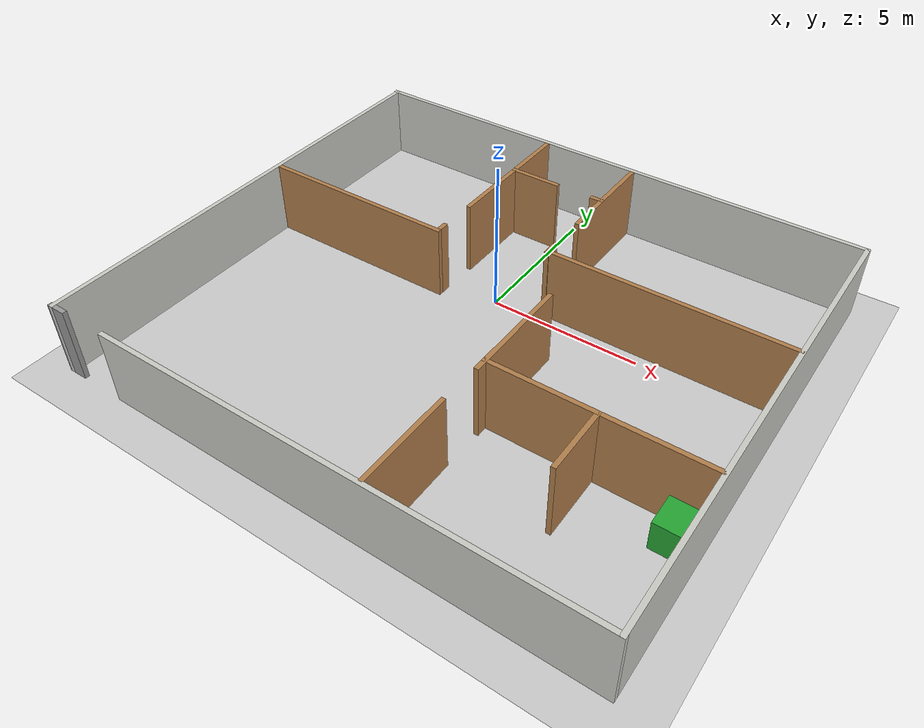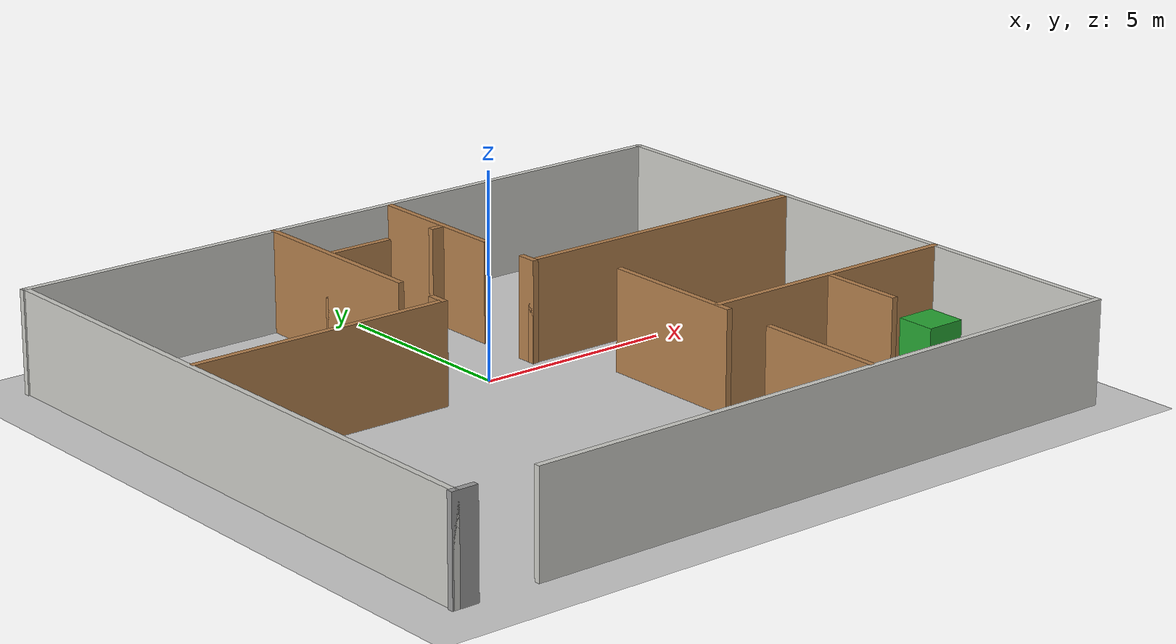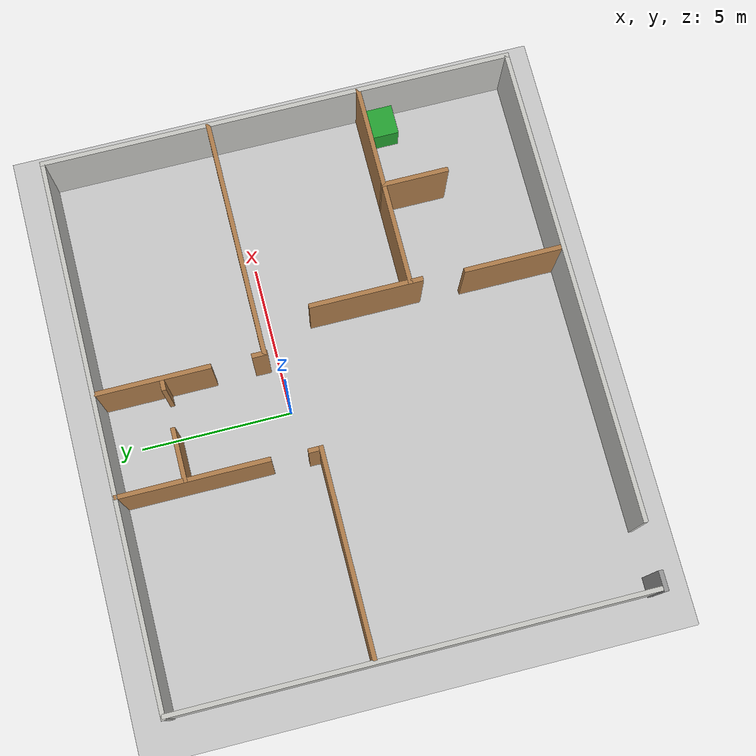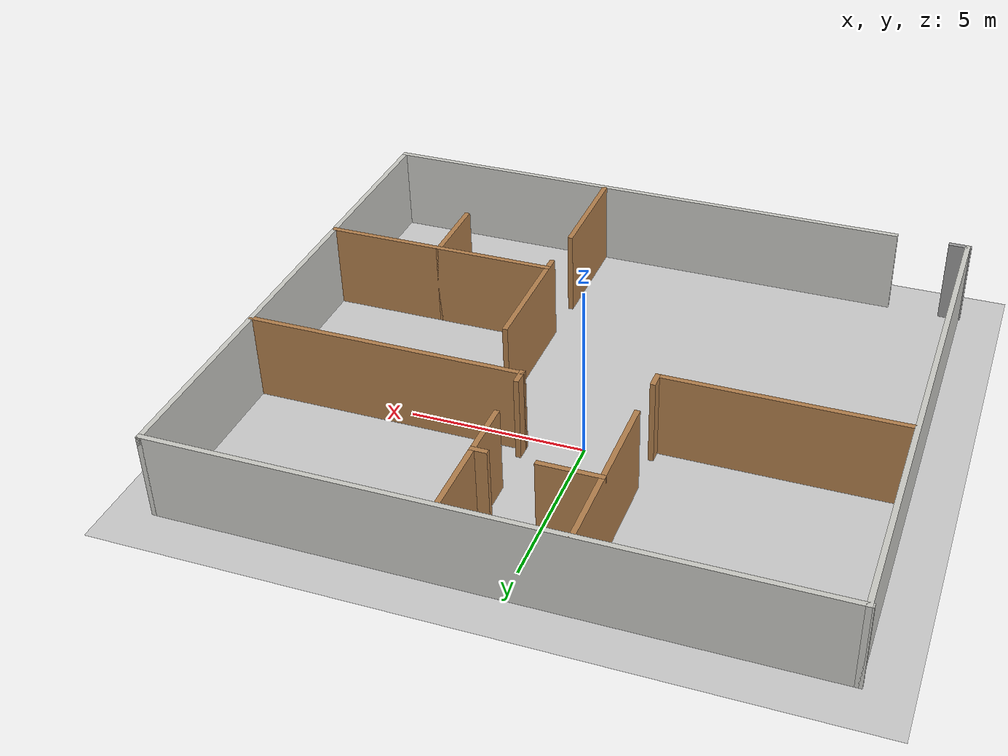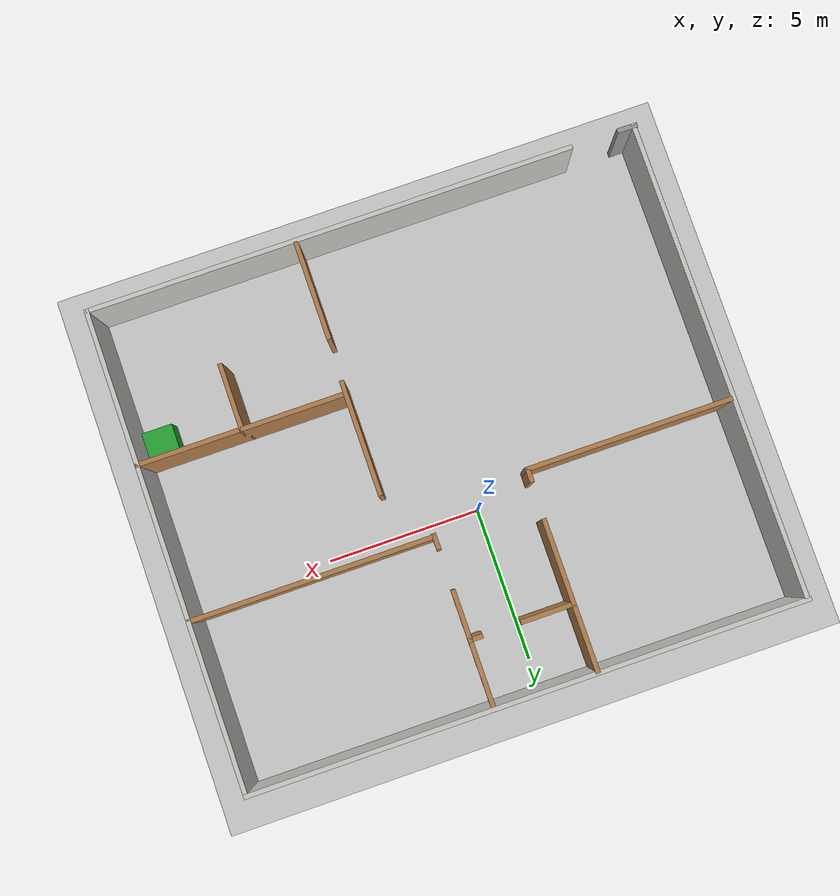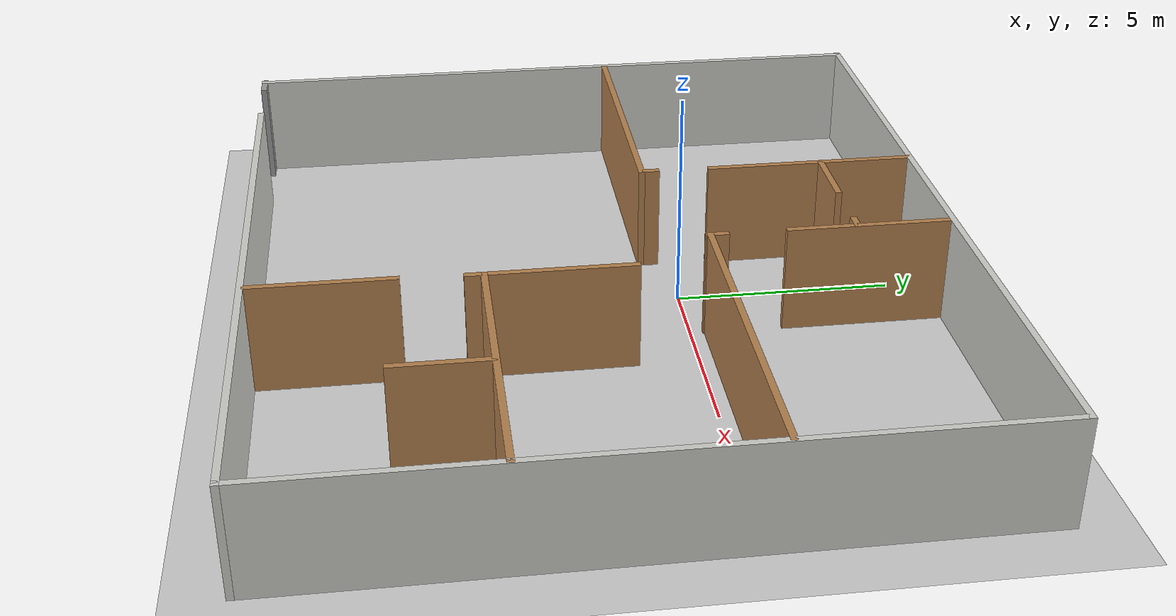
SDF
<sdf version="1.6">
 <world name="default">
  <light name="sun" type="directional">
   <pose>0 0 10 0 -0 0</pose>
   <diffuse>0.8 0.8 0.8 1</diffuse>
   <specular>0.2 0.2 0.2 1</specular>
   <attenuation>
    <range>1000</range>
    <constant>0.9</constant>
    <linear>0.01</linear>
    <quadratic>0.001</quadratic>
   </attenuation>
   <direction>-0.5 0.1 -0.9</direction>
  </light>
  <model name="ground_plane">
   <static>1</static>
   <link name="link">
    <collision name="collision">
     <geometry><plane><normal>0 0 1</normal><size>100 100</size></plane></geometry>
     <surface><friction><ode><mu>100</mu><mu2>50</mu2></ode></friction></surface>
    </collision>
    <visual name="visual">
     <cast_shadows>0</cast_shadows>
     <geometry><plane><normal>0 0 1</normal><size>100 100</size></plane></geometry>
     <material>
      <script><uri>file://media/materials/scripts/gazebo.material</uri><name>Gazebo/Grey</name></script>
     </material>
    </visual>
   </link>
  </model>
  <gravity>0 0 -9.8</gravity>
  <magnetic_field>6e-06 2.3e-05 -4.2e-05</magnetic_field>
  <atmosphere type="adiabatic"/>
  <physics name="default_physics" default="0" type="ode">
   <max_step_size>0.001</max_step_size>
   <real_time_factor>1</real_time_factor>
   <real_time_update_rate>1000</real_time_update_rate>
  </physics>
  <scene><ambient>0.4 0.4 0.4 1</ambient><background>0.7 0.7 0.7 1</background><shadows>1</shadows></scene>
  <audio><device>default</device></audio>
  <spherical_coordinates>
   <surface_model>EARTH_WGS84</surface_model>
   <latitude_deg>0</latitude_deg>
   <longitude_deg>0</longitude_deg>
   <elevation>0</elevation>
   <heading_deg>0</heading_deg>
  </spherical_coordinates>
  <model name="House_Wall">
   <pose>0.46318 -1.89127 0 0 -0 0</pose>
   <link name="Wall_0">
    <collision name="Wall_0_Collision">
     <geometry><box><size>0.659097 0.15 2.5</size></box></geometry>
     <pose>0 0 1.25 0 -0 0</pose>
    </collision>
    <visual name="Wall_0_Visual">
     <pose>0 0 1.25 0 -0 0</pose>
     <geometry><box><size>0.659097 0.15 2.5</size></box></geometry>
     <material>
      <script><uri>file://media/materials/scripts/gazebo.material</uri><name>Gazebo/Grey</name></script>
      <ambient>1 1 1 1</ambient>
     </material>
     <meta><layer>0</layer></meta>
    </visual>
    <pose>-8.75 -7.8 0 0 -0 3.14159</pose>
   </link>
   <link name="Wall_1">
    <collision name="Wall_1_Collision">
     <geometry><box><size>15.75 0.15 2.5</size></box></geometry>
     <pose>0 0 1.25 0 -0 0</pose>
    </collision>
    <visual name="Wall_1_Visual">
     <pose>0 0 1.25 0 -0 0</pose>
     <geometry><box><size>15.75 0.15 2.5</size></box></geometry>
     <material>
      <script><uri>file://media/materials/scripts/gazebo.material</uri><name>Gazebo/CeilingTiled</name></script>
      <ambient>1 1 1 1</ambient>
     </material>
     <meta><layer>0</layer></meta>
    </visual>
    <pose>-8.96477 0 0 0 -0 1.5708</pose>
   </link>
   <link name="Wall_11">
    <collision name="Wall_11_Collision">
     <geometry><box><size>1.78 0.15 2.5</size></box></geometry>
     <pose>0 0 1.25 0 -0 0</pose>
    </collision>
    <visual name="Wall_11_Visual">
     <pose>0 0 1.25 0 -0 0</pose>
     <geometry><box><size>1.78 0.15 2.5</size></box></geometry>
     <material>
      <script><uri>file://media/materials/scripts/gazebo.material</uri><name>Gazebo/Wood</name></script>
      <ambient>1 1 1 1</ambient>
     </material>
     <meta><layer>0</layer></meta>
    </visual>
    <pose>-1.39578 5.60433 0 0 -0 3.14159</pose>
   </link>
   <link name="Wall_13">
    <collision name="Wall_13_Collision">
     <geometry><box><size>0.481 0.15 2.5</size></box></geometry>
     <pose>0 0 1.25 0 -0 0</pose>
    </collision>
    <visual name="Wall_13_Visual">
     <pose>0 0 1.25 0 -0 0</pose>
     <geometry><box><size>0.481 0.15 2.5</size></box></geometry>
     <material>
      <script><uri>file://media/materials/scripts/gazebo.material</uri><name>Gazebo/Wood</name></script>
      <ambient>1 1 1 1</ambient>
     </material>
     <meta><layer>0</layer></meta>
    </visual>
    <pose>0.951719 5.60733 0 0 -0 0</pose>
   </link>
   <link name="Wall_15">
    <collision name="Wall_15_Collision">
     <geometry><box><size>3.75 0.15 2.5</size></box></geometry>
     <pose>0 0 1.25 0 -0 0</pose>
    </collision>
    <visual name="Wall_15_Visual">
     <pose>0 0 1.25 0 -0 0</pose>
     <geometry><box><size>3.75 0.15 2.5</size></box></geometry>
     <material>
      <script><uri>file://media/materials/scripts/gazebo.material</uri><name>Gazebo/Wood</name></script>
      <ambient>1 1 1 1</ambient>
     </material>
     <meta><layer>0</layer></meta>
    </visual>
    <pose>1.11722 5.87333 0 0 -0 1.5708</pose>
   </link>
   <link name="Wall_17">
    <collision name="Wall_17_Collision">
     <geometry><box><size>0.520675 0.15 2.5</size></box></geometry>
     <pose>0 0 1.25 0 -0 0</pose>
    </collision>
    <visual name="Wall_17_Visual">
     <pose>0 0 1.25 0 -0 0</pose>
     <geometry><box><size>0.520675 0.15 2.5</size></box></geometry>
     <material>
      <script><uri>file://media/materials/scripts/gazebo.material</uri><name>Gazebo/Wood</name></script>
      <ambient>1 1 1 1</ambient>
     </material>
     <meta><layer>0</layer></meta>
    </visual>
    <pose>1.11696 2.44486 0 0 -0 -1.5708</pose>
   </link>
   <link name="Wall_18">
    <collision name="Wall_18_Collision">
     <geometry><box><size>8 0.15 2.5</size></box></geometry>
     <pose>0 0 1.25 0 -0 0</pose>
    </collision>
    <visual name="Wall_18_Visual">
     <pose>0 0 1.25 0 -0 0</pose>
     <geometry><box><size>8 0.15 2.5</size></box></geometry>
     <material>
      <script><uri>file://media/materials/scripts/gazebo.material</uri><name>Gazebo/Wood</name></script>
      <ambient>1 1 1 1</ambient>
     </material>
     <meta><layer>0</layer></meta>
    </visual>
    <pose>5.04196 2.2896 0 0 -0 0</pose>
   </link>
   <link name="Wall_2">
    <collision name="Wall_2_Collision">
     <geometry><box><size>18.1591 0.15 2.5</size></box></geometry>
     <pose>0 0 1.25 0 -0 0</pose>
    </collision>
    <visual name="Wall_2_Visual">
     <pose>0 0 1.25 0 -0 0</pose>
     <geometry><box><size>18.1591 0.15 2.5</size></box></geometry>
     <material>
      <script><uri>file://media/materials/scripts/gazebo.material</uri><name>Gazebo/CeilingTiled</name></script>
      <ambient>1 1 1 1</ambient>
     </material>
     <meta><layer>0</layer></meta>
    </visual>
    <pose>-1e-06 7.8 0 0 -0 0</pose>
   </link>
   <link name="Wall_20">
    <collision name="Wall_20_Collision">
     <geometry><box><size>3.75 0.15 2.5</size></box></geometry>
     <pose>0 0 1.25 0 -0 0</pose>
    </collision>
    <visual name="Wall_20_Visual">
     <pose>0 0 1.25 0 -0 0</pose>
     <geometry><box><size>3.75 0.15 2.5</size></box></geometry>
     <material>
      <script><uri>file://media/materials/scripts/gazebo.material</uri><name>Gazebo/Wood</name></script>
      <ambient>1 1 1 1</ambient>
     </material>
     <meta><layer>0</layer></meta>
    </visual>
    <pose>2.26022 -1.30467 0 0 -0 -1.5708</pose>
   </link>
   <link name="Wall_22">
    <collision name="Wall_22_Collision">
     <geometry><box><size>6.86989 0.15 2.5</size></box></geometry>
     <pose>0 0 1.25 0 -0 0</pose>
    </collision>
    <visual name="Wall_22_Visual">
     <pose>0 0 1.25 0 -0 0</pose>
     <geometry><box><size>6.86989 0.15 2.5</size></box></geometry>
     <material>
      <script><uri>file://media/materials/scripts/gazebo.material</uri><name>Gazebo/Wood</name></script>
      <ambient>1 1 1 1</ambient>
     </material>
     <meta><layer>0</layer></meta>
    </visual>
    <pose>5.62022 -2.75367 0 0 -0 0</pose>
   </link>
   <link name="Wall_24">
    <collision name="Wall_24_Collision">
     <geometry><box><size>2.225 0.15 2.5</size></box></geometry>
     <pose>0 0 1.25 0 -0 0</pose>
    </collision>
    <visual name="Wall_24_Visual">
     <pose>0 0 1.25 0 -0 0</pose>
     <geometry><box><size>2.225 0.15 2.5</size></box></geometry>
     <material>
      <script><uri>file://media/materials/scripts/gazebo.material</uri><name>Gazebo/Wood</name></script>
      <ambient>1 1 1 1</ambient>
     </material>
     <meta><layer>0</layer></meta>
    </visual>
    <pose>5.62822 -3.79117 0 0 -0 1.5708</pose>
   </link>
   <link name="Wall_26">
    <collision name="Wall_26_Collision">
     <geometry><box><size>3.25 0.15 2.5</size></box></geometry>
     <pose>0 0 1.25 0 -0 0</pose>
    </collision>
    <visual name="Wall_26_Visual">
     <pose>0 0 1.25 0 -0 0</pose>
     <geometry><box><size>3.25 0.15 2.5</size></box></geometry>
     <material>
      <script><uri>file://media/materials/scripts/gazebo.material</uri><name>Gazebo/Wood</name></script>
      <ambient>1 1 1 1</ambient>
     </material>
     <meta><layer>0</layer></meta>
    </visual>
    <pose>2.19966 -6.13779 0 0 -0 -1.5708</pose>
   </link>
   <link name="Wall_3">
    <collision name="Wall_3_Collision">
     <geometry><box><size>15.75 0.15 2.5</size></box></geometry>
     <pose>0 0 1.25 0 -0 0</pose>
    </collision>
    <visual name="Wall_3_Visual">
     <pose>0 0 1.25 0 -0 0</pose>
     <geometry><box><size>15.75 0.15 2.5</size></box></geometry>
     <material>
      <script><uri>file://media/materials/scripts/gazebo.material</uri><name>Gazebo/CeilingTiled</name></script>
      <ambient>1 1 1 1</ambient>
     </material>
     <meta><layer>0</layer></meta>
    </visual>
    <pose>9.00455 0 0 0 -0 -1.5708</pose>
   </link>
   <link name="Wall_4">
    <collision name="Wall_4_Collision">
     <geometry><box><size>16 0.15 2.5</size></box></geometry>
     <pose>0 0 1.25 0 -0 0</pose>
    </collision>
    <visual name="Wall_4_Visual">
     <pose>0 0 1.25 0 -0 0</pose>
     <geometry><box><size>16 0.15 2.5</size></box></geometry>
     <material>
      <script><uri>file://media/materials/scripts/gazebo.material</uri><name>Gazebo/CeilingTiled</name></script>
      <ambient>1 1 1 1</ambient>
     </material>
     <meta><layer>0</layer></meta>
    </visual>
    <pose>1.07955 -7.8 0 0 -0 3.14159</pose>
   </link>
   <link name="Wall_6">
    <collision name="Wall_6_Collision">
     <geometry><box><size>0.5 0.15 2.5</size></box></geometry>
     <pose>0 0 1.25 0 -0 0</pose>
    </collision>
    <visual name="Wall_6_Visual">
     <pose>0 0 1.25 0 -0 0</pose>
     <geometry><box><size>0.5 0.15 2.5</size></box></geometry>
     <material>
      <script><uri>file://media/materials/scripts/gazebo.material</uri><name>Gazebo/Wood</name></script>
      <ambient>1 1 1 1</ambient>
     </material>
     <meta><layer>0</layer></meta>
    </visual>
    <pose>-2.25091 1.45147 0 0 -0 -1.5708</pose>
   </link>
   <link name="Wall_7">
    <collision name="Wall_7_Collision">
     <geometry><box><size>6.75 0.15 2.5</size></box></geometry>
     <pose>0 0 1.25 0 -0 0</pose>
    </collision>
    <visual name="Wall_7_Visual">
     <pose>0 0 1.25 0 -0 0</pose>
     <geometry><box><size>6.75 0.15 2.5</size></box></geometry>
     <material>
      <script><uri>file://media/materials/scripts/gazebo.material</uri><name>Gazebo/Wood</name></script>
      <ambient>1 1 1 1</ambient>
     </material>
     <meta><layer>0</layer></meta>
    </visual>
    <pose>-5.55091 1.27647 0 0 -0 3.14159</pose>
   </link>
   <link name="Wall_9">
    <collision name="Wall_9_Collision">
     <geometry><box><size>5 0.15 2.5</size></box></geometry>
     <pose>0 0 1.25 0 -0 0</pose>
    </collision>
    <visual name="Wall_9_Visual">
     <pose>0 0 1.25 0 -0 0</pose>
     <geometry><box><size>5 0.15 2.5</size></box></geometry>
     <material>
      <script><uri>file://media/materials/scripts/gazebo.material</uri><name>Gazebo/Wood</name></script>
      <ambient>1 1 1 1</ambient>
     </material>
     <meta><layer>0</layer></meta>
    </visual>
    <pose>-2.21078 5.36433 0 0 -0 1.5708</pose>
   </link>
   <static>1</static>
  </model>
  <model name="unit_box">
   <pose>8.79355 -5.26706 0.499995 0 -1e-05 -3e-06</pose>
   <link name="link">
    <inertial>
     <mass>1</mass>
     <inertia>
      <ixx>0.166667</ixx>
      <ixy>0</ixy>
      <ixz>0</ixz>
      <iyy>0.166667</iyy>
      <iyz>0</iyz>
      <izz>0.166667</izz>
     </inertia>
    </inertial>
    <collision name="collision"><geometry><box><size>1 1 1</size></box></geometry></collision>
    <visual name="visual">
     <geometry><box><size>1 1 1</size></box></geometry>
     <material>
      <script><name>Gazebo/Green</name><uri>file://media/materials/scripts/gazebo.material</uri></script>
     </material>
    </visual>
   </link>
  </model>
 </world>
</sdf>
